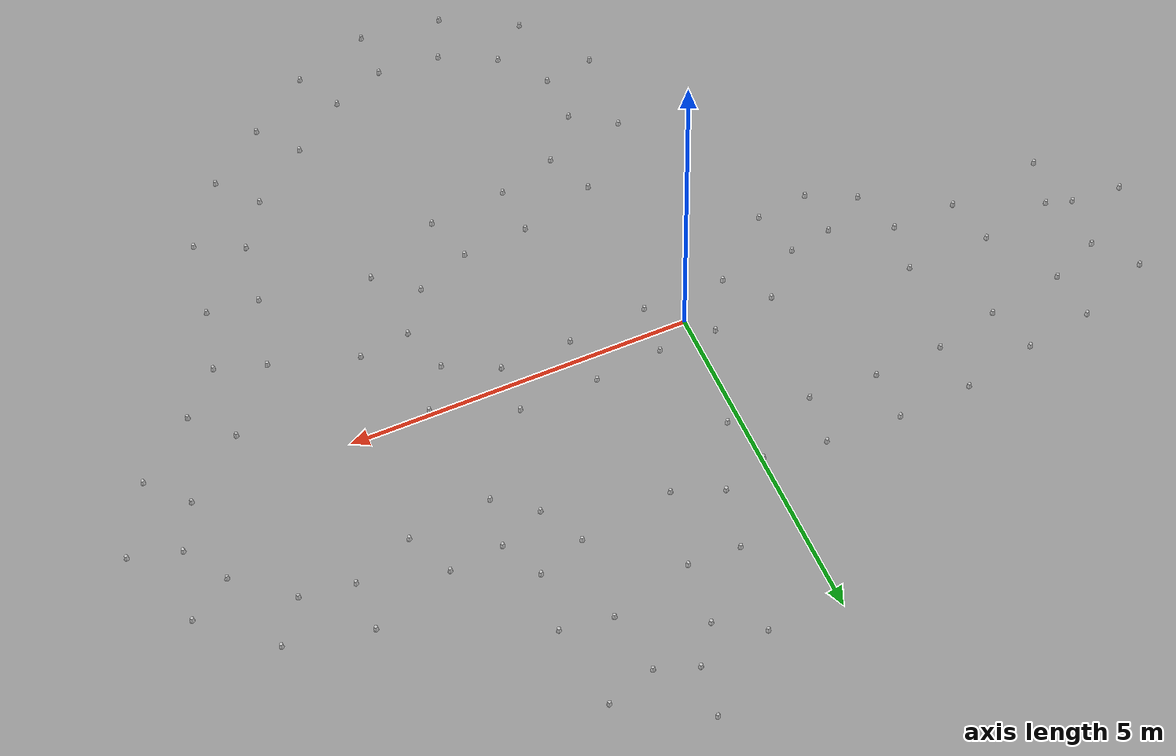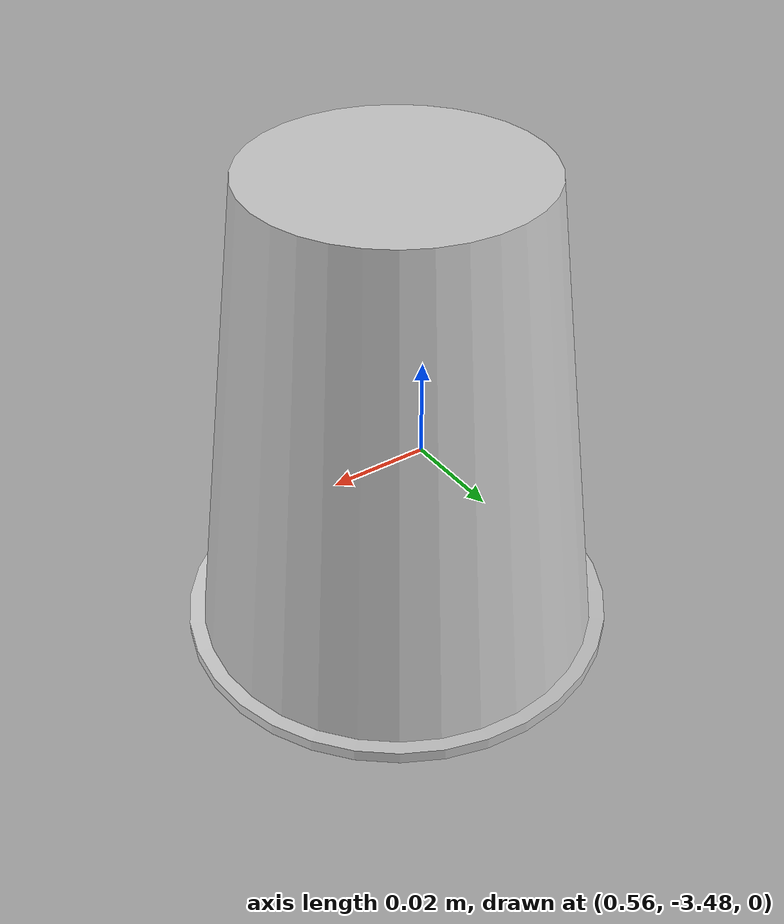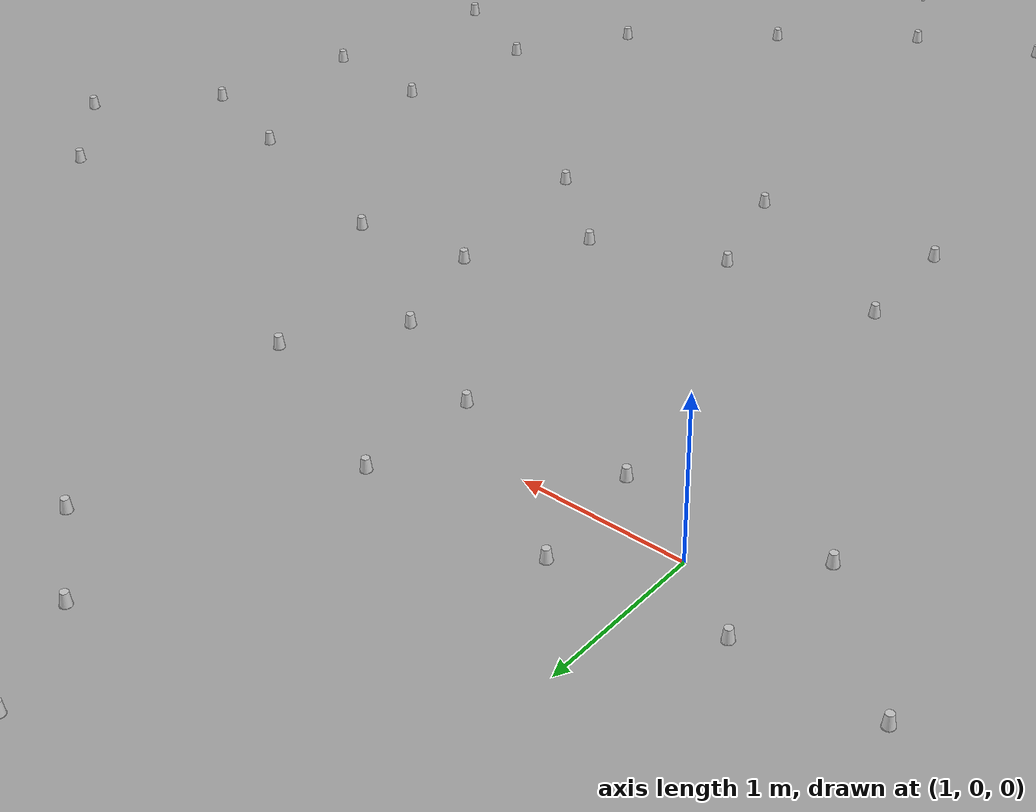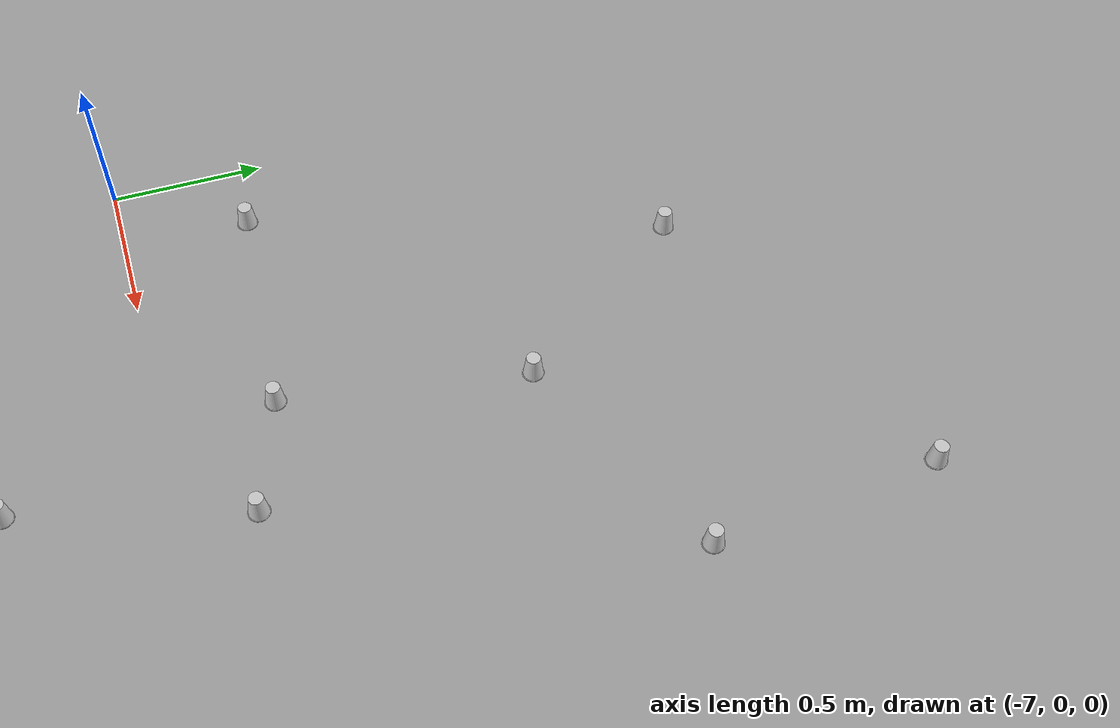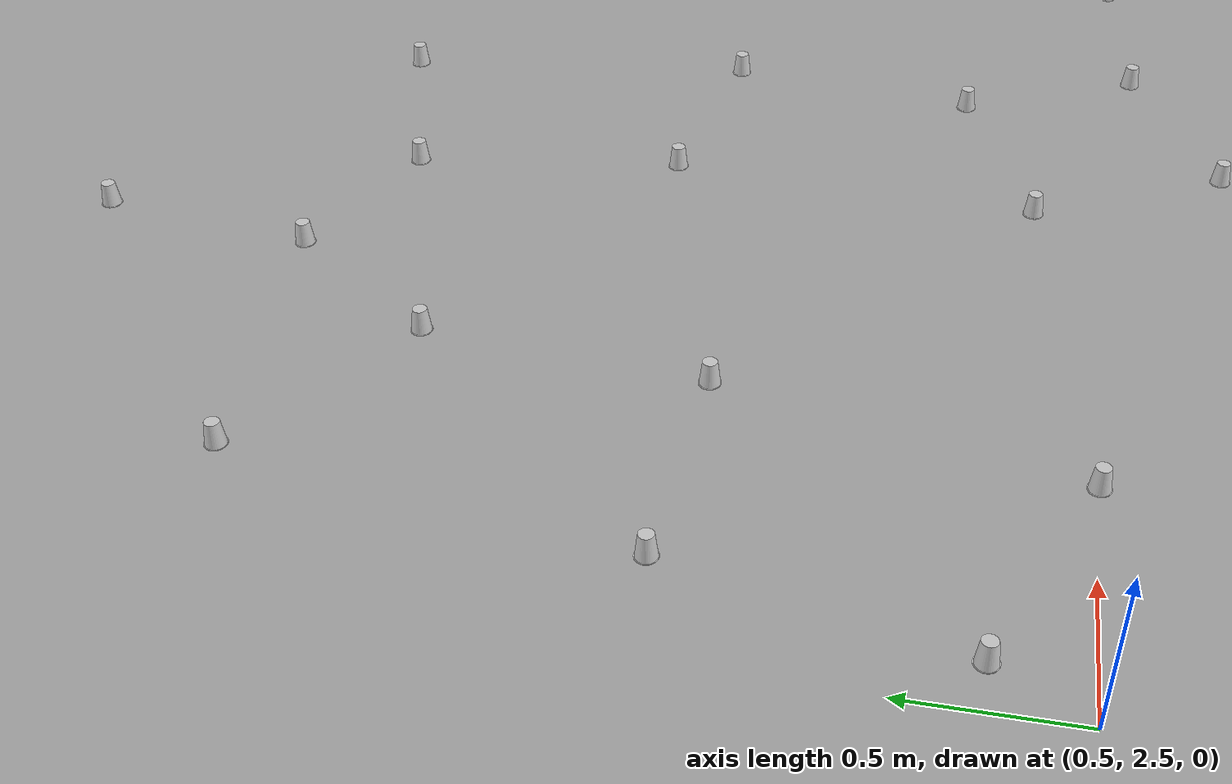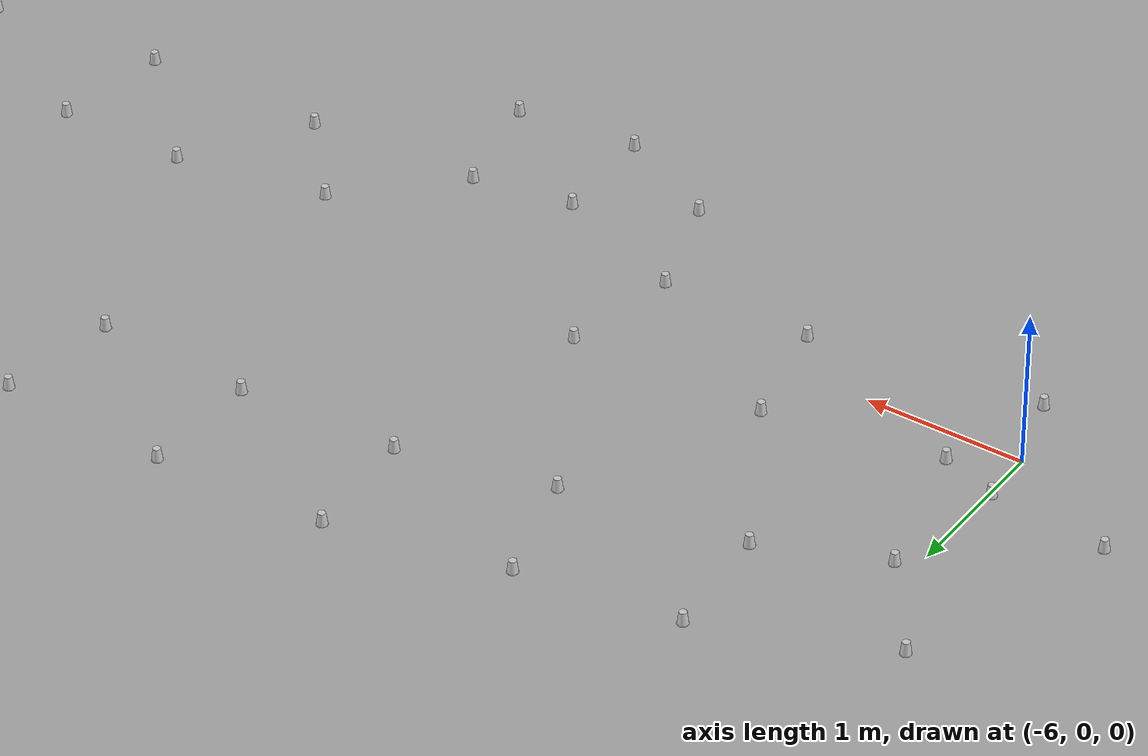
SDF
<?xml version='1.0' encoding='UTF-8'?>
<sdf version="1.4">
  <model name="some track">
    <include>
      <uri>model://cone_yellow</uri>
      <pose>0.43369553669619504 -0.4312386435365399 0 0 0 0</pose>
      <name>cone_right_0</name>
    </include>
    <include>
      <uri>model://cone_yellow</uri>
      <pose>1.60710218771096 -0.3406011593265782 0 0 0 0</pose>
      <name>cone_right_1</name>
    </include>
    <include>
      <uri>model://cone_yellow</uri>
      <pose>2.658125622919995 -0.3133075473356284 0 0 0 0</pose>
      <name>cone_right_2</name>
    </include>
    <include>
      <uri>model://cone_yellow</uri>
      <pose>3.408183736508735 -0.6855678934988614 0 0 0 0</pose>
      <name>cone_right_3</name>
    </include>
    <include>
      <uri>model://cone_yellow</uri>
      <pose>3.6279715105920616 -1.3958013861130618 0 0 0 0</pose>
      <name>cone_right_4</name>
    </include>
    <include>
      <uri>model://cone_yellow</uri>
      <pose>3.1798751393236087 -2.0342847909303696 0 0 0 0</pose>
      <name>cone_right_5</name>
    </include>
    <include>
      <uri>model://cone_yellow</uri>
      <pose>2.3878731540010163 -2.352731639773786 0 0 0 0</pose>
      <name>cone_right_6</name>
    </include>
    <include>
      <uri>model://cone_yellow</uri>
      <pose>1.416090128314876 -2.426158868666722 0 0 0 0</pose>
      <name>cone_right_7</name>
    </include>
    <include>
      <uri>model://cone_yellow</uri>
      <pose>0.2868729085305962 -2.7604556116069268 0 0 0 0</pose>
      <name>cone_right_8</name>
    </include>
    <include>
      <uri>model://cone_yellow</uri>
      <pose>-0.5974416058624236 -3.6792988501885464 0 0 0 0</pose>
      <name>cone_right_9</name>
    </include>
    <include>
      <uri>model://cone_yellow</uri>
      <pose>-0.7006930456403091 -4.988438813786538 0 0 0 0</pose>
      <name>cone_right_10</name>
    </include>
    <include>
      <uri>model://cone_yellow</uri>
      <pose>-0.003606340825024479 -6.063279078935051 0 0 0 0</pose>
      <name>cone_right_11</name>
    </include>
    <include>
      <uri>model://cone_yellow</uri>
      <pose>1.0707346290616349 -6.665404529944588 0 0 0 0</pose>
      <name>cone_right_12</name>
    </include>
    <include>
      <uri>model://cone_yellow</uri>
      <pose>2.2800822068771898 -6.806438694632968 0 0 0 0</pose>
      <name>cone_right_13</name>
    </include>
    <include>
      <uri>model://cone_yellow</uri>
      <pose>3.41162379254238 -6.406114788322202 0 0 0 0</pose>
      <name>cone_right_14</name>
    </include>
    <include>
      <uri>model://cone_yellow</uri>
      <pose>4.341835197381684 -5.722867944606673 0 0 0 0</pose>
      <name>cone_right_15</name>
    </include>
    <include>
      <uri>model://cone_yellow</uri>
      <pose>5.211302200556216 -5.042994224998352 0 0 0 0</pose>
      <name>cone_right_16</name>
    </include>
    <include>
      <uri>model://cone_yellow</uri>
      <pose>5.874242537080567 -4.0730979245393 0 0 0 0</pose>
      <name>cone_right_17</name>
    </include>
    <include>
      <uri>model://cone_yellow</uri>
      <pose>6.084339796451425 -2.889579658555904 0 0 0 0</pose>
      <name>cone_right_18</name>
    </include>
    <include>
      <uri>model://cone_yellow</uri>
      <pose>6.312796313638974 -1.939058698814235 0 0 0 0</pose>
      <name>cone_right_19</name>
    </include>
    <include>
      <uri>model://cone_yellow</uri>
      <pose>6.897882652714069 -1.3063834611088923 0 0 0 0</pose>
      <name>cone_right_20</name>
    </include>
    <include>
      <uri>model://cone_yellow</uri>
      <pose>7.782100195817904 -0.5536790230413389 0 0 0 0</pose>
      <name>cone_right_21</name>
    </include>
    <include>
      <uri>model://cone_yellow</uri>
      <pose>8.35128941624379 0.4845514259896357 0 0 0 0</pose>
      <name>cone_right_22</name>
    </include>
    <include>
      <uri>model://cone_yellow</uri>
      <pose>7.859314789233915 1.737442968327228 0 0 0 0</pose>
      <name>cone_right_23</name>
    </include>
    <include>
      <uri>model://cone_yellow</uri>
      <pose>6.926620655145792 2.57526277461351 0 0 0 0</pose>
      <name>cone_right_24</name>
    </include>
    <include>
      <uri>model://cone_yellow</uri>
      <pose>5.718428653351732 2.837490308154881 0 0 0 0</pose>
      <name>cone_right_25</name>
    </include>
    <include>
      <uri>model://cone_yellow</uri>
      <pose>4.5115101079546225 2.418952303687163 0 0 0 0</pose>
      <name>cone_right_26</name>
    </include>
    <include>
      <uri>model://cone_yellow</uri>
      <pose>3.73531677802874 2.3476294098924657 0 0 0 0</pose>
      <name>cone_right_27</name>
    </include>
    <include>
      <uri>model://cone_yellow</uri>
      <pose>3.4382496612504583 2.9567570520678017 0 0 0 0</pose>
      <name>cone_right_28</name>
    </include>
    <include>
      <uri>model://cone_yellow</uri>
      <pose>3.5550392520089895 3.8309558638739305 0 0 0 0</pose>
      <name>cone_right_29</name>
    </include>
    <include>
      <uri>model://cone_yellow</uri>
      <pose>3.3891554085825057 5.084176209621535 0 0 0 0</pose>
      <name>cone_right_30</name>
    </include>
    <include>
      <uri>model://cone_yellow</uri>
      <pose>2.19597444865751 5.814419867677913 0 0 0 0</pose>
      <name>cone_right_31</name>
    </include>
    <include>
      <uri>model://cone_yellow</uri>
      <pose>1.068342780642714 4.9467693359337135 0 0 0 0</pose>
      <name>cone_right_32</name>
    </include>
    <include>
      <uri>model://cone_yellow</uri>
      <pose>0.859827898564614 3.6578109056562766 0 0 0 0</pose>
      <name>cone_right_33</name>
    </include>
    <include>
      <uri>model://cone_yellow</uri>
      <pose>0.6570572924274937 2.769341009491259 0 0 0 0</pose>
      <name>cone_right_34</name>
    </include>
    <include>
      <uri>model://cone_yellow</uri>
      <pose>-0.0235574073598767 2.5104047353995678 0 0 0 0</pose>
      <name>cone_right_35</name>
    </include>
    <include>
      <uri>model://cone_yellow</uri>
      <pose>-0.9291583720592217 2.623712126544886 0 0 0 0</pose>
      <name>cone_right_36</name>
    </include>
    <include>
      <uri>model://cone_yellow</uri>
      <pose>-2.0287367515737933 2.6712059326368762 0 0 0 0</pose>
      <name>cone_right_37</name>
    </include>
    <include>
      <uri>model://cone_yellow</uri>
      <pose>-3.1238569887615135 2.6136312252113787 0 0 0 0</pose>
      <name>cone_right_38</name>
    </include>
    <include>
      <uri>model://cone_yellow</uri>
      <pose>-4.218197577452424 2.364657253173668 0 0 0 0</pose>
      <name>cone_right_39</name>
    </include>
    <include>
      <uri>model://cone_yellow</uri>
      <pose>-5.214725423133306 2.2072006571152283 0 0 0 0</pose>
      <name>cone_right_40</name>
    </include>
    <include>
      <uri>model://cone_yellow</uri>
      <pose>-6.32564330394548 1.752077310423137 0 0 0 0</pose>
      <name>cone_right_41</name>
    </include>
    <include>
      <uri>model://cone_yellow</uri>
      <pose>-6.761750880003317 0.4137753711423672 0 0 0 0</pose>
      <name>cone_right_42</name>
    </include>
    <include>
      <uri>model://cone_yellow</uri>
      <pose>-5.845619929314739 -0.49863169374821326 0 0 0 0</pose>
      <name>cone_right_43</name>
    </include>
    <include>
      <uri>model://cone_yellow</uri>
      <pose>-4.401600865095655 -0.297851931489338 0 0 0 0</pose>
      <name>cone_right_44</name>
    </include>
    <include>
      <uri>model://cone_yellow</uri>
      <pose>-3.4421888062206554 -0.27466071407480563 0 0 0 0</pose>
      <name>cone_right_45</name>
    </include>
    <include>
      <uri>model://cone_yellow</uri>
      <pose>-3.2072147316300263 -0.982638386982829 0 0 0 0</pose>
      <name>cone_right_46</name>
    </include>
    <include>
      <uri>model://cone_yellow</uri>
      <pose>-1.7376601732370622 -1.2343108625605597 0 0 0 0</pose>
      <name>cone_right_47</name>
    </include>
    <include>
      <uri>model://cone_yellow</uri>
      <pose>-0.7898079512257979 -0.43299399189566534 0 0 0 0</pose>
      <name>cone_right_48</name>
    </include>
    <include>
      <uri>model://cone_yellow</uri>
      <pose>-2.518042777888475 -1.3228338688613945 0 0 0 0</pose>
      <name>cone_right_49</name>
    </include>
    <include>
      <uri>model://cone_blue</uri>
      <pose>0.5253596021187208 0.3131387467099768 0 0 0 0</pose>
      <name>cone_left_0</name>
    </include>
    <include>
      <uri>model://cone_blue</uri>
      <pose>1.5222236314605881 0.4045804498727179 0 0 0 0</pose>
      <name>cone_left_1</name>
    </include>
    <include>
      <uri>model://cone_blue</uri>
      <pose>2.6835578424926676 0.43626113011001255 0 0 0 0</pose>
      <name>cone_left_2</name>
    </include>
    <include>
      <uri>model://cone_blue</uri>
      <pose>3.830051220545453 -0.06546481665394704 0 0 0 0</pose>
      <name>cone_left_3</name>
    </include>
    <include>
      <uri>model://cone_blue</uri>
      <pose>4.3710943070223705 -1.2944677321495426 0 0 0 0</pose>
      <name>cone_left_4</name>
    </include>
    <include>
      <uri>model://cone_blue</uri>
      <pose>3.753476501948371 -2.5174840011894686 0 0 0 0</pose>
      <name>cone_left_5</name>
    </include>
    <include>
      <uri>model://cone_blue</uri>
      <pose>2.605743037227626 -3.0703894370440614 0 0 0 0</pose>
      <name>cone_left_6</name>
    </include>
    <include>
      <uri>model://cone_blue</uri>
      <pose>1.459424160081326 -3.174905929890247 0 0 0 0</pose>
      <name>cone_left_7</name>
    </include>
    <include>
      <uri>model://cone_blue</uri>
      <pose>0.5885469685259415 -3.4471089167951603 0 0 0 0</pose>
      <name>cone_left_8</name>
    </include>
    <include>
      <uri>model://cone_blue</uri>
      <pose>0.021562688131684937 -4.102776929924506 0 0 0 0</pose>
      <name>cone_left_9</name>
    </include>
    <include>
      <uri>model://cone_blue</uri>
      <pose>0.0399505229059548 -4.87034095448733 0 0 0 0</pose>
      <name>cone_left_10</name>
    </include>
    <include>
      <uri>model://cone_blue</uri>
      <pose>0.5531052109156731 -5.560713413416141 0 0 0 0</pose>
      <name>cone_left_11</name>
    </include>
    <include>
      <uri>model://cone_blue</uri>
      <pose>1.358481332741585 -5.9727994227432895 0 0 0 0</pose>
      <name>cone_left_12</name>
    </include>
    <include>
      <uri>model://cone_blue</uri>
      <pose>2.281258713798849 -6.056439617412559 0 0 0 0</pose>
      <name>cone_left_13</name>
    </include>
    <include>
      <uri>model://cone_blue</uri>
      <pose>3.0696198689127225 -5.7386319674032515 0 0 0 0</pose>
      <name>cone_left_14</name>
    </include>
    <include>
      <uri>model://cone_blue</uri>
      <pose>3.8808810440974195 -5.131241991347363 0 0 0 0</pose>
      <name>cone_left_15</name>
    </include>
    <include>
      <uri>model://cone_blue</uri>
      <pose>4.738078030560101 -4.46113609372279 0 0 0 0</pose>
      <name>cone_left_16</name>
    </include>
    <include>
      <uri>model://cone_blue</uri>
      <pose>5.197400168295941 -3.7500121653080782 0 0 0 0</pose>
      <name>cone_left_17</name>
    </include>
    <include>
      <uri>model://cone_blue</uri>
      <pose>5.33964914332435 -2.8004963764813717 0 0 0 0</pose>
      <name>cone_left_18</name>
    </include>
    <include>
      <uri>model://cone_blue</uri>
      <pose>5.601114650599908 -1.702396047570002 0 0 0 0</pose>
      <name>cone_left_19</name>
    </include>
    <include>
      <uri>model://cone_blue</uri>
      <pose>6.383303548089355 -0.7607568991788223 0 0 0 0</pose>
      <name>cone_left_20</name>
    </include>
    <include>
      <uri>model://cone_blue</uri>
      <pose>7.284006248819097 0.007036965640229764 0 0 0 0</pose>
      <name>cone_left_21</name>
    </include>
    <include>
      <uri>model://cone_blue</uri>
      <pose>7.630248838379907 0.6909502754867174 0 0 0 0</pose>
      <name>cone_left_22</name>
    </include>
    <include>
      <uri>model://cone_blue</uri>
      <pose>7.237256901122686 1.3184632745011455 0 0 0 0</pose>
      <name>cone_left_23</name>
    </include>
    <include>
      <uri>model://cone_blue</uri>
      <pose>6.478130146245428 1.9741336175879227 0 0 0 0</pose>
      <name>cone_left_24</name>
    </include>
    <include>
      <uri>model://cone_blue</uri>
      <pose>5.712052976317348 2.0875174081495853 0 0 0 0</pose>
      <name>cone_left_25</name>
    </include>
    <include>
      <uri>model://cone_blue</uri>
      <pose>4.826486483166718 1.7382982924169368 0 0 0 0</pose>
      <name>cone_left_26</name>
    </include>
    <include>
      <uri>model://cone_blue</uri>
      <pose>3.6123852808124983 1.607772770406022 0 0 0 0</pose>
      <name>cone_left_27</name>
    </include>
    <include>
      <uri>model://cone_blue</uri>
      <pose>2.7352187866071094 2.69551465639243 0 0 0 0</pose>
      <name>cone_left_28</name>
    </include>
    <include>
      <uri>model://cone_blue</uri>
      <pose>2.8133911750415503 3.9425718570402277 0 0 0 0</pose>
      <name>cone_left_29</name>
    </include>
    <include>
      <uri>model://cone_blue</uri>
      <pose>2.674428335150457 4.8568763844934475 0 0 0 0</pose>
      <name>cone_left_30</name>
    </include>
    <include>
      <uri>model://cone_blue</uri>
      <pose>2.0928799370017748 5.0715393108812865 0 0 0 0</pose>
      <name>cone_left_31</name>
    </include>
    <include>
      <uri>model://cone_blue</uri>
      <pose>1.6987324394625531 4.54043341818461 0 0 0 0</pose>
      <name>cone_left_32</name>
    </include>
    <include>
      <uri>model://cone_blue</uri>
      <pose>1.608873121564419 3.619978989220912 0 0 0 0</pose>
      <name>cone_left_33</name>
    </include>
    <include>
      <uri>model://cone_blue</uri>
      <pose>1.353279199683409 2.4904592139990918 0 0 0 0</pose>
      <name>cone_left_34</name>
    </include>
    <include>
      <uri>model://cone_blue</uri>
      <pose>0.17674462020940257 1.7876467553318027 0 0 0 0</pose>
      <name>cone_left_35</name>
    </include>
    <include>
      <uri>model://cone_blue</uri>
      <pose>-1.0292551265500236 1.8804217124129614 0 0 0 0</pose>
      <name>cone_left_36</name>
    </include>
    <include>
      <uri>model://cone_blue</uri>
      <pose>-2.039217228244817 1.921279163139515 0 0 0 0</pose>
      <name>cone_left_37</name>
    </include>
    <include>
      <uri>model://cone_blue</uri>
      <pose>-3.0639413308676815 1.8660283132727282 0 0 0 0</pose>
      <name>cone_left_38</name>
    </include>
    <include>
      <uri>model://cone_blue</uri>
      <pose>-4.01270436608047 1.6433580502903975 0 0 0 0</pose>
      <name>cone_left_39</name>
    </include>
    <include>
      <uri>model://cone_blue</uri>
      <pose>-5.15050375787991 1.4599553307918844 0 0 0 0</pose>
      <name>cone_left_40</name>
    </include>
    <include>
      <uri>model://cone_blue</uri>
      <pose>-5.8822045056478665 1.1472120095797436 0 0 0 0</pose>
      <name>cone_left_41</name>
    </include>
    <include>
      <uri>model://cone_blue</uri>
      <pose>-6.014310176293653 0.35186903513381884 0 0 0 0</pose>
      <name>cone_left_42</name>
    </include>
    <include>
      <uri>model://cone_blue</uri>
      <pose>-5.645131776141732 0.224074678464788 0 0 0 0</pose>
      <name>cone_left_43</name>
    </include>
    <include>
      <uri>model://cone_blue</uri>
      <pose>-4.561023614805609 0.4350084828290487 0 0 0 0</pose>
      <name>cone_left_44</name>
    </include>
    <include>
      <uri>model://cone_blue</uri>
      <pose>-3.3078292478791527 0.46320614998826937 0 0 0 0</pose>
      <name>cone_left_45</name>
    </include>
    <include>
      <uri>model://cone_blue</uri>
      <pose>-2.5528393163249756 -0.6161785449205062 0 0 0 0</pose>
      <name>cone_left_46</name>
    </include>
    <include>
      <uri>model://cone_blue</uri>
      <pose>-1.9130311101527744 -0.505102363922958 0 0 0 0</pose>
      <name>cone_left_47</name>
    </include>
    <include>
      <uri>model://cone_blue</uri>
      <pose>-1.2885300075693351 0.12716340608857424 0 0 0 0</pose>
      <name>cone_left_48</name>
    </include>
    <include>
      <uri>model://cone_blue</uri>
      <pose>-0.32425861030140624 0.31913955718536613 0 0 0 0</pose>
      <name>cone_left_49</name>
    </include>
    <include>
      <uri>model://cone_blue</uri>
      <pose>3.0673586303853497 2.0553245732512053 0 0 0 0</pose>
      <name>cone_left_50</name>
    </include>
  </model>
</sdf>

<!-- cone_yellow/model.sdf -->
<sdf version='1.4'>
  <model name="cone_yellow">
    <link name="link">
    <collision name="collision"><geometry><box><size> 0.05 0.05 0.01</size>
             </box></geometry></collision>
      <visual name="visual">
        <geometry>
          <mesh>
            <uri>model://cup.dae</uri>
            <scale>1 1 1</scale>
          </mesh>
        </geometry>
        <material>
            <script>
              <uri>model://cone_yellow/materials/scripts</uri>
              <uri>model://cone_yellow/materials/textures</uri>
              <name>cone_yellow/Image</name>
            </script>
        </material>
      </visual>
    </link>
  </model>
</sdf>

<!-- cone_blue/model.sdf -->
<sdf version='1.4'>
  <model name="cone_blue">
    <link name="link">
    <collision name="collision"><geometry><box><size> 0.05 0.05 0.01</size>
             </box></geometry></collision>
      <visual name="visual">
        <geometry>
          <mesh>
            <uri>model://cup.dae</uri>
            <scale>1 1 1</scale>
          </mesh>
        </geometry>
        <material>
            <script>
              <uri>model://cone_blue/materials/scripts</uri>
              <uri>model://cone_blue/materials/textures</uri>
              <name>cone_blue/Image</name>
            </script>
        </material>
      </visual>
    </link>
  </model>
</sdf>
